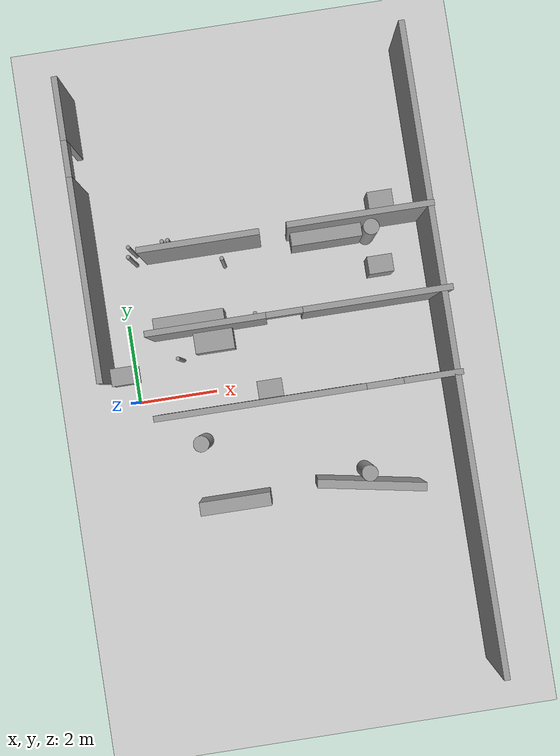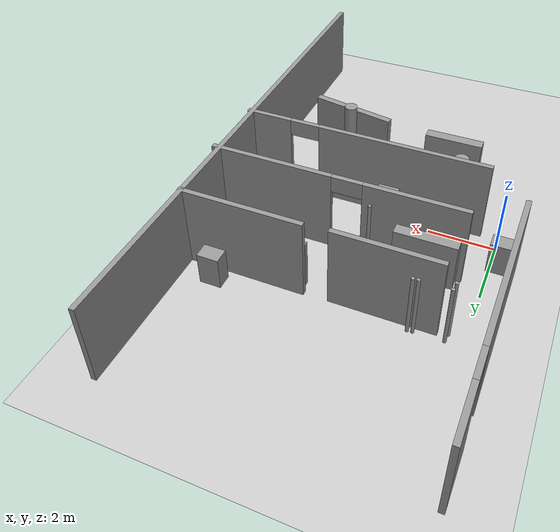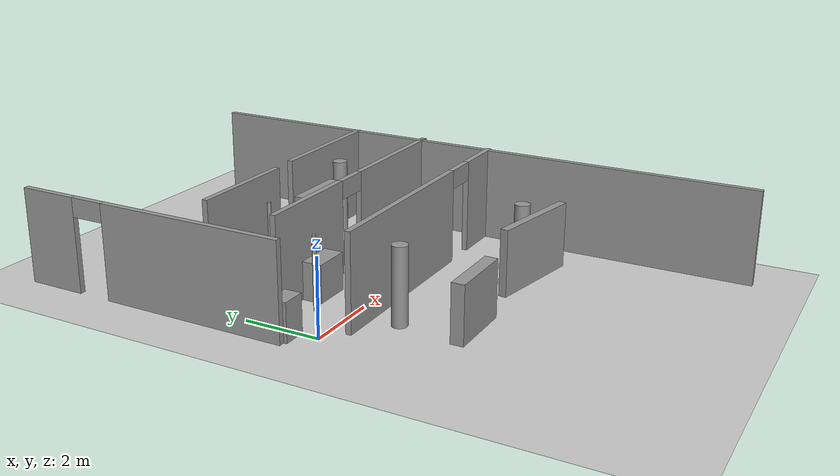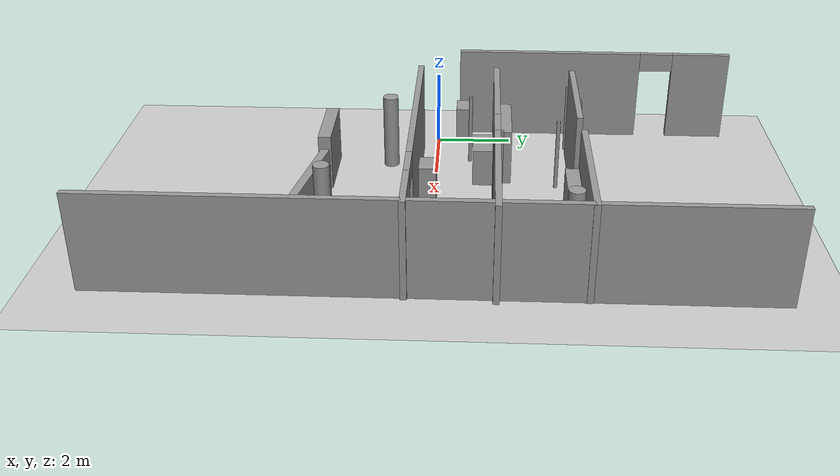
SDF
<sdf version="1.7">
 <world name="default">
  <model name="ground_plane">
   <static>1</static>
   <link name="link">
    <collision name="collision">
     <geometry><plane><normal>0 0 1</normal><size>100 100</size></plane></geometry>
     <surface>
      <contact><collide_bitmask>65535</collide_bitmask></contact>
      <friction><ode><mu>100</mu><mu2>50</mu2></ode></friction>
     </surface>
    </collision>
    <visual name="visual">
     <cast_shadows>0</cast_shadows>
     <geometry><plane><normal>0 0 1</normal><size>100 100</size></plane></geometry>
     <material>
      <script><uri>file://media/materials/scripts/gazebo.material</uri><name>Gazebo/Grey</name></script>
     </material>
    </visual>
   </link>
  </model>
  <model name="Untitled_0">
   <link name="link_0">
    <inertial>
     <mass>1</mass>
     <inertia><ixx>0.145833</ixx><ixy>0</ixy><ixz>0</ixz><iyy>0.145833</iyy><iyz>0</iyz><izz>0.125</izz></inertia>
    </inertial>
    <visual name="visual">
     <geometry><cylinder><radius>0.2</radius><length>2</length></cylinder></geometry>
     <material>
      <lighting>1</lighting>
      <script><uri>file://media/materials/scripts/gazebo.material</uri><name>Gazebo/Grey</name></script>
      <shader type="pixel"><normal_map>__default__</normal_map></shader>
      <ambient>0.3 0.3 0.3 1</ambient>
      <diffuse>0.7 0.7 0.7 1</diffuse>
      <specular>0.01 0.01 0.01 1</specular>
      <emissive>0 0 0 1</emissive>
     </material>
    </visual>
    <collision name="collision">
     <geometry><cylinder><radius>0.2</radius><length>2</length></cylinder></geometry>
     <surface>
      <friction>
       <ode><mu>1</mu><mu2>1</mu2><fdir1>0 0 0</fdir1><slip1>0</slip1><slip2>0</slip2></ode>
       <torsional>
        <coefficient>1</coefficient>
        <patch_radius>0</patch_radius>
        <surface_radius>0</surface_radius>
        <use_patch_radius>1</use_patch_radius>
        <ode><slip>0</slip></ode>
       </torsional>
      </friction>
      <bounce><restitution_coefficient>0</restitution_coefficient><threshold>1e+06</threshold></bounce>
      <contact>
       <collide_without_contact>0</collide_without_contact>
       <collide_without_contact_bitmask>1</collide_without_contact_bitmask>
       <collide_bitmask>1</collide_bitmask>
       <ode>
        <soft_cfm>0</soft_cfm>
        <soft_erp>0.2</soft_erp>
        <kp>1e+13</kp>
        <kd>1</kd>
        <max_vel>0.01</max_vel>
        <min_depth>0</min_depth>
       </ode>
       <bullet>
        <split_impulse>1</split_impulse>
        <split_impulse_penetration_threshold>-0.01</split_impulse_penetration_threshold>
        <soft_cfm>0</soft_cfm>
        <soft_erp>0.2</soft_erp>
        <kp>1e+13</kp>
        <kd>1</kd>
       </bullet>
      </contact>
     </surface>
    </collision>
   </link>
   <static>0</static>
   <pose>5.46755 -2.55179 0.999996 0 -0 0.000125</pose>
  </model>
  <model name="Untitled_0_clone">
   <link name="link_0">
    <inertial>
     <mass>1</mass>
     <inertia><ixx>0.145833</ixx><ixy>0</ixy><ixz>0</ixz><iyy>0.145833</iyy><iyz>0</iyz><izz>0.125</izz></inertia>
    </inertial>
    <visual name="visual">
     <geometry><cylinder><radius>0.2</radius><length>2</length></cylinder></geometry>
     <material>
      <lighting>1</lighting>
      <script><uri>file://media/materials/scripts/gazebo.material</uri><name>Gazebo/Grey</name></script>
      <shader type="pixel"><normal_map>__default__</normal_map></shader>
      <ambient>0.3 0.3 0.3 1</ambient>
      <diffuse>0.7 0.7 0.7 1</diffuse>
      <specular>0.01 0.01 0.01 1</specular>
      <emissive>0 0 0 1</emissive>
     </material>
    </visual>
    <collision name="collision">
     <geometry><cylinder><radius>0.2</radius><length>2</length></cylinder></geometry>
     <surface>
      <friction>
       <ode><mu>1</mu><mu2>1</mu2><fdir1>0 0 0</fdir1><slip1>0</slip1><slip2>0</slip2></ode>
       <torsional>
        <coefficient>1</coefficient>
        <patch_radius>0</patch_radius>
        <surface_radius>0</surface_radius>
        <use_patch_radius>1</use_patch_radius>
        <ode><slip>0</slip></ode>
       </torsional>
      </friction>
      <bounce><restitution_coefficient>0</restitution_coefficient><threshold>1e+06</threshold></bounce>
      <contact>
       <collide_without_contact>0</collide_without_contact>
       <collide_without_contact_bitmask>1</collide_without_contact_bitmask>
       <collide_bitmask>1</collide_bitmask>
       <ode>
        <soft_cfm>0</soft_cfm>
        <soft_erp>0.2</soft_erp>
        <kp>1e+13</kp>
        <kd>1</kd>
        <max_vel>0.01</max_vel>
        <min_depth>0</min_depth>
       </ode>
       <bullet>
        <split_impulse>1</split_impulse>
        <split_impulse_penetration_threshold>-0.01</split_impulse_penetration_threshold>
        <soft_cfm>0</soft_cfm>
        <soft_erp>0.2</soft_erp>
        <kp>1e+13</kp>
        <kd>1</kd>
       </bullet>
      </contact>
     </surface>
    </collision>
   </link>
   <static>0</static>
   <pose>1.5286 -1.22831 0.999994 0 -0 0.061669</pose>
  </model>
  <model name="Untitled">
   <link name="Wall_1">
    <pose>7.85247 -0.035444 0 0 0 -1.5708</pose>
    <visual name="Wall_1_Visual">
     <pose>0 0 1.25 0 -0 0</pose>
     <geometry><box><size>16 0.15 2.5</size></box></geometry>
     <material>
      <script><uri>file://media/materials/scripts/gazebo.material</uri><name>Gazebo/Grey</name></script>
      <ambient>1 1 1 1</ambient>
      <shader type="pixel"/>
     </material>
     <meta><layer>0</layer></meta>
    </visual>
    <collision name="Wall_1_Collision">
     <pose>0 0 1.25 0 -0 0</pose>
     <geometry><box><size>16 0.15 2.5</size></box></geometry>
     <surface>
      <friction>
       <ode><mu>1</mu><mu2>1</mu2><fdir1>0 0 0</fdir1><slip1>0</slip1><slip2>0</slip2></ode>
       <torsional>
        <coefficient>1</coefficient>
        <patch_radius>0</patch_radius>
        <surface_radius>0</surface_radius>
        <use_patch_radius>1</use_patch_radius>
        <ode><slip>0</slip></ode>
       </torsional>
      </friction>
      <bounce><restitution_coefficient>0</restitution_coefficient><threshold>1e+06</threshold></bounce>
      <contact>
       <collide_without_contact>0</collide_without_contact>
       <collide_without_contact_bitmask>1</collide_without_contact_bitmask>
       <collide_bitmask>1</collide_bitmask>
       <ode>
        <soft_cfm>0</soft_cfm>
        <soft_erp>0.2</soft_erp>
        <kp>1e+13</kp>
        <kd>1</kd>
        <max_vel>0.01</max_vel>
        <min_depth>0</min_depth>
       </ode>
       <bullet>
        <split_impulse>1</split_impulse>
        <split_impulse_penetration_threshold>-0.01</split_impulse_penetration_threshold>
        <soft_cfm>0</soft_cfm>
        <soft_erp>0.2</soft_erp>
        <kp>1e+13</kp>
        <kd>1</kd>
       </bullet>
      </contact>
     </surface>
    </collision>
   </link>
   <link name="Wall_40">
    <pose>4.24273 -0.649108 0 0 -0 0</pose>
    <visual name="Wall_40_Visual_0">
     <pose>-1.17108 0 1.25 0 -0 0</pose>
     <geometry><box><size>5.15784 0.15 2.5</size></box></geometry>
     <material>
      <script><uri>file://media/materials/scripts/gazebo.material</uri><name>Gazebo/Grey</name></script>
      <ambient>1 1 1 1</ambient>
      <shader type="pixel"/>
     </material>
     <meta><layer>0</layer></meta>
    </visual>
    <visual name="Wall_40_Visual_1">
     <pose>3.02892 0 1.25 0 -0 0</pose>
     <geometry><box><size>1.44216 0.15 2.5</size></box></geometry>
     <material>
      <script><uri>file://media/materials/scripts/gazebo.material</uri><name>Gazebo/Grey</name></script>
      <ambient>1 1 1 1</ambient>
      <shader type="pixel"/>
     </material>
     <meta><layer>0</layer></meta>
    </visual>
    <visual name="Wall_40_Visual_2">
     <pose>1.85784 0 2.25 0 -0 0</pose>
     <geometry><box><size>0.9 0.15 0.5</size></box></geometry>
     <material>
      <script><uri>file://media/materials/scripts/gazebo.material</uri><name>Gazebo/Grey</name></script>
      <ambient>1 1 1 1</ambient>
      <shader type="pixel"/>
     </material>
     <meta><layer>0</layer></meta>
    </visual>
    <collision name="Wall_40_Collision_0">
     <pose>-1.17108 0 1.25 0 -0 0</pose>
     <geometry><box><size>5.15784 0.15 2.5</size></box></geometry>
     <surface>
      <friction>
       <ode><mu>1</mu><mu2>1</mu2><fdir1>0 0 0</fdir1><slip1>0</slip1><slip2>0</slip2></ode>
       <torsional>
        <coefficient>1</coefficient>
        <patch_radius>0</patch_radius>
        <surface_radius>0</surface_radius>
        <use_patch_radius>1</use_patch_radius>
        <ode><slip>0</slip></ode>
       </torsional>
      </friction>
      <bounce><restitution_coefficient>0</restitution_coefficient><threshold>1e+06</threshold></bounce>
      <contact>
       <collide_without_contact>0</collide_without_contact>
       <collide_without_contact_bitmask>1</collide_without_contact_bitmask>
       <collide_bitmask>1</collide_bitmask>
       <ode>
        <soft_cfm>0</soft_cfm>
        <soft_erp>0.2</soft_erp>
        <kp>1e+13</kp>
        <kd>1</kd>
        <max_vel>0.01</max_vel>
        <min_depth>0</min_depth>
       </ode>
       <bullet>
        <split_impulse>1</split_impulse>
        <split_impulse_penetration_threshold>-0.01</split_impulse_penetration_threshold>
        <soft_cfm>0</soft_cfm>
        <soft_erp>0.2</soft_erp>
        <kp>1e+13</kp>
        <kd>1</kd>
       </bullet>
      </contact>
     </surface>
    </collision>
    <collision name="Wall_40_Collision_1">
     <pose>3.02892 0 1.25 0 -0 0</pose>
     <geometry><box><size>1.44216 0.15 2.5</size></box></geometry>
     <surface>
      <friction>
       <ode><mu>1</mu><mu2>1</mu2><fdir1>0 0 0</fdir1><slip1>0</slip1><slip2>0</slip2></ode>
       <torsional>
        <coefficient>1</coefficient>
        <patch_radius>0</patch_radius>
        <surface_radius>0</surface_radius>
        <use_patch_radius>1</use_patch_radius>
        <ode><slip>0</slip></ode>
       </torsional>
      </friction>
      <bounce><restitution_coefficient>0</restitution_coefficient><threshold>1e+06</threshold></bounce>
      <contact>
       <collide_without_contact>0</collide_without_contact>
       <collide_without_contact_bitmask>1</collide_without_contact_bitmask>
       <collide_bitmask>1</collide_bitmask>
       <ode>
        <soft_cfm>0</soft_cfm>
        <soft_erp>0.2</soft_erp>
        <kp>1e+13</kp>
        <kd>1</kd>
        <max_vel>0.01</max_vel>
        <min_depth>0</min_depth>
       </ode>
       <bullet>
        <split_impulse>1</split_impulse>
        <split_impulse_penetration_threshold>-0.01</split_impulse_penetration_threshold>
        <soft_cfm>0</soft_cfm>
        <soft_erp>0.2</soft_erp>
        <kp>1e+13</kp>
        <kd>1</kd>
       </bullet>
      </contact>
     </surface>
    </collision>
    <collision name="Wall_40_Collision_2">
     <pose>1.85784 0 2.25 0 -0 0</pose>
     <geometry><box><size>0.9 0.15 0.5</size></box></geometry>
     <surface>
      <friction>
       <ode><mu>1</mu><mu2>1</mu2><fdir1>0 0 0</fdir1><slip1>0</slip1><slip2>0</slip2></ode>
       <torsional>
        <coefficient>1</coefficient>
        <patch_radius>0</patch_radius>
        <surface_radius>0</surface_radius>
        <use_patch_radius>1</use_patch_radius>
        <ode><slip>0</slip></ode>
       </torsional>
      </friction>
      <bounce><restitution_coefficient>0</restitution_coefficient><threshold>1e+06</threshold></bounce>
      <contact>
       <collide_without_contact>0</collide_without_contact>
       <collide_without_contact_bitmask>1</collide_without_contact_bitmask>
       <collide_bitmask>1</collide_bitmask>
       <ode>
        <soft_cfm>0</soft_cfm>
        <soft_erp>0.2</soft_erp>
        <kp>1e+13</kp>
        <kd>1</kd>
        <max_vel>0.01</max_vel>
        <min_depth>0</min_depth>
       </ode>
       <bullet>
        <split_impulse>1</split_impulse>
        <split_impulse_penetration_threshold>-0.01</split_impulse_penetration_threshold>
        <soft_cfm>0</soft_cfm>
        <soft_erp>0.2</soft_erp>
        <kp>1e+13</kp>
        <kd>1</kd>
       </bullet>
      </contact>
     </surface>
    </collision>
   </link>
   <link name="Wall_44">
    <pose>4.32253 1.39911 0 0 -0 0</pose>
    <visual name="Wall_44_Visual_0">
     <pose>-2.27499 0 1.25 0 -0 0</pose>
     <geometry><box><size>2.95003 0.15 2.5</size></box></geometry>
     <material>
      <script><uri>file://media/materials/scripts/gazebo.material</uri><name>Gazebo/Grey</name></script>
      <ambient>1 1 1 1</ambient>
      <shader type="pixel"/>
     </material>
     <meta><layer>0</layer></meta>
    </visual>
    <visual name="Wall_44_Visual_1">
     <pose>1.92501 0 1.25 0 -0 0</pose>
     <geometry><box><size>3.64997 0.15 2.5</size></box></geometry>
     <material>
      <script><uri>file://media/materials/scripts/gazebo.material</uri><name>Gazebo/Grey</name></script>
      <ambient>1 1 1 1</ambient>
      <shader type="pixel"/>
     </material>
     <meta><layer>0</layer></meta>
    </visual>
    <visual name="Wall_44_Visual_2">
     <pose>-0.349975 0 2.25 0 -0 0</pose>
     <geometry><box><size>0.9 0.15 0.5</size></box></geometry>
     <material>
      <script><uri>file://media/materials/scripts/gazebo.material</uri><name>Gazebo/Grey</name></script>
      <ambient>1 1 1 1</ambient>
      <shader type="pixel"/>
     </material>
     <meta><layer>0</layer></meta>
    </visual>
    <collision name="Wall_44_Collision_0">
     <pose>-2.27499 0 1.25 0 -0 0</pose>
     <geometry><box><size>2.95003 0.15 2.5</size></box></geometry>
     <surface>
      <friction>
       <ode><mu>1</mu><mu2>1</mu2><fdir1>0 0 0</fdir1><slip1>0</slip1><slip2>0</slip2></ode>
       <torsional>
        <coefficient>1</coefficient>
        <patch_radius>0</patch_radius>
        <surface_radius>0</surface_radius>
        <use_patch_radius>1</use_patch_radius>
        <ode><slip>0</slip></ode>
       </torsional>
      </friction>
      <bounce><restitution_coefficient>0</restitution_coefficient><threshold>1e+06</threshold></bounce>
      <contact>
       <collide_without_contact>0</collide_without_contact>
       <collide_without_contact_bitmask>1</collide_without_contact_bitmask>
       <collide_bitmask>1</collide_bitmask>
       <ode>
        <soft_cfm>0</soft_cfm>
        <soft_erp>0.2</soft_erp>
        <kp>1e+13</kp>
        <kd>1</kd>
        <max_vel>0.01</max_vel>
        <min_depth>0</min_depth>
       </ode>
       <bullet>
        <split_impulse>1</split_impulse>
        <split_impulse_penetration_threshold>-0.01</split_impulse_penetration_threshold>
        <soft_cfm>0</soft_cfm>
        <soft_erp>0.2</soft_erp>
        <kp>1e+13</kp>
        <kd>1</kd>
       </bullet>
      </contact>
     </surface>
    </collision>
    <collision name="Wall_44_Collision_1">
     <pose>1.92501 0 1.25 0 -0 0</pose>
     <geometry><box><size>3.64997 0.15 2.5</size></box></geometry>
     <surface>
      <friction>
       <ode><mu>1</mu><mu2>1</mu2><fdir1>0 0 0</fdir1><slip1>0</slip1><slip2>0</slip2></ode>
       <torsional>
        <coefficient>1</coefficient>
        <patch_radius>0</patch_radius>
        <surface_radius>0</surface_radius>
        <use_patch_radius>1</use_patch_radius>
        <ode><slip>0</slip></ode>
       </torsional>
      </friction>
      <bounce><restitution_coefficient>0</restitution_coefficient><threshold>1e+06</threshold></bounce>
      <contact>
       <collide_without_contact>0</collide_without_contact>
       <collide_without_contact_bitmask>1</collide_without_contact_bitmask>
       <collide_bitmask>1</collide_bitmask>
       <ode>
        <soft_cfm>0</soft_cfm>
        <soft_erp>0.2</soft_erp>
        <kp>1e+13</kp>
        <kd>1</kd>
        <max_vel>0.01</max_vel>
        <min_depth>0</min_depth>
       </ode>
       <bullet>
        <split_impulse>1</split_impulse>
        <split_impulse_penetration_threshold>-0.01</split_impulse_penetration_threshold>
        <soft_cfm>0</soft_cfm>
        <soft_erp>0.2</soft_erp>
        <kp>1e+13</kp>
        <kd>1</kd>
       </bullet>
      </contact>
     </surface>
    </collision>
    <collision name="Wall_44_Collision_2">
     <pose>-0.349975 0 2.25 0 -0 0</pose>
     <geometry><box><size>0.9 0.15 0.5</size></box></geometry>
     <surface>
      <friction>
       <ode><mu>1</mu><mu2>1</mu2><fdir1>0 0 0</fdir1><slip1>0</slip1><slip2>0</slip2></ode>
       <torsional>
        <coefficient>1</coefficient>
        <patch_radius>0</patch_radius>
        <surface_radius>0</surface_radius>
        <use_patch_radius>1</use_patch_radius>
        <ode><slip>0</slip></ode>
       </torsional>
      </friction>
      <bounce><restitution_coefficient>0</restitution_coefficient><threshold>1e+06</threshold></bounce>
      <contact>
       <collide_without_contact>0</collide_without_contact>
       <collide_without_contact_bitmask>1</collide_without_contact_bitmask>
       <collide_bitmask>1</collide_bitmask>
       <ode>
        <soft_cfm>0</soft_cfm>
        <soft_erp>0.2</soft_erp>
        <kp>1e+13</kp>
        <kd>1</kd>
        <max_vel>0.01</max_vel>
        <min_depth>0</min_depth>
       </ode>
       <bullet>
        <split_impulse>1</split_impulse>
        <split_impulse_penetration_threshold>-0.01</split_impulse_penetration_threshold>
        <soft_cfm>0</soft_cfm>
        <soft_erp>0.2</soft_erp>
        <kp>1e+13</kp>
        <kd>1</kd>
       </bullet>
      </contact>
     </surface>
    </collision>
   </link>
   <link name="Wall_54">
    <pose>2.17516 3.42072 0 0 -0 3.14159</pose>
    <visual name="Wall_54_Visual">
     <pose>0 0 1.25 0 -0 0</pose>
     <geometry><box><size>3 0.15 2.5</size></box></geometry>
     <material>
      <script><uri>file://media/materials/scripts/gazebo.material</uri><name>Gazebo/Grey</name></script>
      <ambient>1 1 1 1</ambient>
      <shader type="pixel"/>
     </material>
     <meta><layer>0</layer></meta>
    </visual>
    <collision name="Wall_54_Collision">
     <pose>0 0 1.25 0 -0 0</pose>
     <geometry><box><size>3 0.15 2.5</size></box></geometry>
     <surface>
      <friction>
       <ode><mu>1</mu><mu2>1</mu2><fdir1>0 0 0</fdir1><slip1>0</slip1><slip2>0</slip2></ode>
       <torsional>
        <coefficient>1</coefficient>
        <patch_radius>0</patch_radius>
        <surface_radius>0</surface_radius>
        <use_patch_radius>1</use_patch_radius>
        <ode><slip>0</slip></ode>
       </torsional>
      </friction>
      <bounce><restitution_coefficient>0</restitution_coefficient><threshold>1e+06</threshold></bounce>
      <contact>
       <collide_without_contact>0</collide_without_contact>
       <collide_without_contact_bitmask>1</collide_without_contact_bitmask>
       <collide_bitmask>1</collide_bitmask>
       <ode>
        <soft_cfm>0</soft_cfm>
        <soft_erp>0.2</soft_erp>
        <kp>1e+13</kp>
        <kd>1</kd>
        <max_vel>0.01</max_vel>
        <min_depth>0</min_depth>
       </ode>
       <bullet>
        <split_impulse>1</split_impulse>
        <split_impulse_penetration_threshold>-0.01</split_impulse_penetration_threshold>
        <soft_cfm>0</soft_cfm>
        <soft_erp>0.2</soft_erp>
        <kp>1e+13</kp>
        <kd>1</kd>
       </bullet>
      </contact>
     </surface>
    </collision>
   </link>
   <link name="Wall_56">
    <pose>6.14496 3.47392 0 0 -0 0</pose>
    <inertial>
     <inertia><ixx>0</ixx><ixy>0</ixy><ixz>0</ixz><iyy>0</iyy><iyz>0</iyz><izz>0</izz></inertia>
     <mass>0</mass>
    </inertial>
    <visual name="Wall_56_Visual">
     <pose>0 0 1.25 0 -0 0</pose>
     <geometry><box><size>3.60104 0.15 2.5</size></box></geometry>
     <material>
      <script><uri>file://media/materials/scripts/gazebo.material</uri><name>Gazebo/Grey</name></script>
      <ambient>1 1 1 1</ambient>
      <shader type="pixel"/>
     </material>
     <meta><layer>0</layer></meta>
    </visual>
    <collision name="Wall_56_Collision">
     <pose>0 0 1.25 0 -0 0</pose>
     <geometry><box><size>3.60104 0.15 2.5</size></box></geometry>
     <surface>
      <friction>
       <ode><mu>1</mu><mu2>1</mu2><fdir1>0 0 0</fdir1><slip1>0</slip1><slip2>0</slip2></ode>
       <torsional>
        <coefficient>1</coefficient>
        <patch_radius>0</patch_radius>
        <surface_radius>0</surface_radius>
        <use_patch_radius>1</use_patch_radius>
        <ode><slip>0</slip></ode>
       </torsional>
      </friction>
      <bounce><restitution_coefficient>0</restitution_coefficient><threshold>1e+06</threshold></bounce>
      <contact>
       <collide_without_contact>0</collide_without_contact>
       <collide_without_contact_bitmask>1</collide_without_contact_bitmask>
       <collide_bitmask>1</collide_bitmask>
       <ode>
        <soft_cfm>0</soft_cfm>
        <soft_erp>0.2</soft_erp>
        <kp>1e+13</kp>
        <kd>1</kd>
        <max_vel>0.01</max_vel>
        <min_depth>0</min_depth>
       </ode>
       <bullet>
        <split_impulse>1</split_impulse>
        <split_impulse_penetration_threshold>-0.01</split_impulse_penetration_threshold>
        <soft_cfm>0</soft_cfm>
        <soft_erp>0.2</soft_erp>
        <kp>1e+13</kp>
        <kd>1</kd>
       </bullet>
      </contact>
     </surface>
    </collision>
   </link>
   <link name="Wall_7">
    <pose>-0.647532 4.13833 0 0 0 -1.5708</pose>
    <visual name="Wall_7_Visual_0">
     <pose>-2.96481 0 1.25 0 -0 0</pose>
     <geometry><box><size>1.57038 0.15 2.5</size></box></geometry>
     <material>
      <script><uri>file://media/materials/scripts/gazebo.material</uri><name>Gazebo/Grey</name></script>
      <ambient>1 1 1 1</ambient>
      <shader type="pixel"/>
     </material>
     <meta><layer>0</layer></meta>
    </visual>
    <visual name="Wall_7_Visual_1">
     <pose>1.23519 0 1.25 0 -0 0</pose>
     <geometry><box><size>5.02962 0.15 2.5</size></box></geometry>
     <material>
      <script><uri>file://media/materials/scripts/gazebo.material</uri><name>Gazebo/Grey</name></script>
      <ambient>1 1 1 1</ambient>
      <shader type="pixel"/>
     </material>
     <meta><layer>0</layer></meta>
    </visual>
    <visual name="Wall_7_Visual_2">
     <pose>-1.72962 0 2.25 0 -0 0</pose>
     <geometry><box><size>0.9 0.15 0.5</size></box></geometry>
     <material>
      <script><uri>file://media/materials/scripts/gazebo.material</uri><name>Gazebo/Grey</name></script>
      <ambient>1 1 1 1</ambient>
      <shader type="pixel"/>
     </material>
     <meta><layer>0</layer></meta>
    </visual>
    <collision name="Wall_7_Collision_0">
     <pose>-2.96481 0 1.25 0 -0 0</pose>
     <geometry><box><size>1.57038 0.15 2.5</size></box></geometry>
     <surface>
      <friction>
       <ode><mu>1</mu><mu2>1</mu2><fdir1>0 0 0</fdir1><slip1>0</slip1><slip2>0</slip2></ode>
       <torsional>
        <coefficient>1</coefficient>
        <patch_radius>0</patch_radius>
        <surface_radius>0</surface_radius>
        <use_patch_radius>1</use_patch_radius>
        <ode><slip>0</slip></ode>
       </torsional>
      </friction>
      <bounce><restitution_coefficient>0</restitution_coefficient><threshold>1e+06</threshold></bounce>
      <contact>
       <collide_without_contact>0</collide_without_contact>
       <collide_without_contact_bitmask>1</collide_without_contact_bitmask>
       <collide_bitmask>1</collide_bitmask>
       <ode>
        <soft_cfm>0</soft_cfm>
        <soft_erp>0.2</soft_erp>
        <kp>1e+13</kp>
        <kd>1</kd>
        <max_vel>0.01</max_vel>
        <min_depth>0</min_depth>
       </ode>
       <bullet>
        <split_impulse>1</split_impulse>
        <split_impulse_penetration_threshold>-0.01</split_impulse_penetration_threshold>
        <soft_cfm>0</soft_cfm>
        <soft_erp>0.2</soft_erp>
        <kp>1e+13</kp>
        <kd>1</kd>
       </bullet>
      </contact>
     </surface>
    </collision>
    <collision name="Wall_7_Collision_1">
     <pose>1.23519 0 1.25 0 -0 0</pose>
     <geometry><box><size>5.02962 0.15 2.5</size></box></geometry>
     <surface>
      <friction>
       <ode><mu>1</mu><mu2>1</mu2><fdir1>0 0 0</fdir1><slip1>0</slip1><slip2>0</slip2></ode>
       <torsional>
        <coefficient>1</coefficient>
        <patch_radius>0</patch_radius>
        <surface_radius>0</surface_radius>
        <use_patch_radius>1</use_patch_radius>
        <ode><slip>0</slip></ode>
       </torsional>
      </friction>
      <bounce><restitution_coefficient>0</restitution_coefficient><threshold>1e+06</threshold></bounce>
      <contact>
       <collide_without_contact>0</collide_without_contact>
       <collide_without_contact_bitmask>1</collide_without_contact_bitmask>
       <collide_bitmask>1</collide_bitmask>
       <ode>
        <soft_cfm>0</soft_cfm>
        <soft_erp>0.2</soft_erp>
        <kp>1e+13</kp>
        <kd>1</kd>
        <max_vel>0.01</max_vel>
        <min_depth>0</min_depth>
       </ode>
       <bullet>
        <split_impulse>1</split_impulse>
        <split_impulse_penetration_threshold>-0.01</split_impulse_penetration_threshold>
        <soft_cfm>0</soft_cfm>
        <soft_erp>0.2</soft_erp>
        <kp>1e+13</kp>
        <kd>1</kd>
       </bullet>
      </contact>
     </surface>
    </collision>
    <collision name="Wall_7_Collision_2">
     <pose>-1.72962 0 2.25 0 -0 0</pose>
     <geometry><box><size>0.9 0.15 0.5</size></box></geometry>
     <surface>
      <friction>
       <ode><mu>1</mu><mu2>1</mu2><fdir1>0 0 0</fdir1><slip1>0</slip1><slip2>0</slip2></ode>
       <torsional>
        <coefficient>1</coefficient>
        <patch_radius>0</patch_radius>
        <surface_radius>0</surface_radius>
        <use_patch_radius>1</use_patch_radius>
        <ode><slip>0</slip></ode>
       </torsional>
      </friction>
      <bounce><restitution_coefficient>0</restitution_coefficient><threshold>1e+06</threshold></bounce>
      <contact>
       <collide_without_contact>0</collide_without_contact>
       <collide_without_contact_bitmask>1</collide_without_contact_bitmask>
       <collide_bitmask>1</collide_bitmask>
       <ode>
        <soft_cfm>0</soft_cfm>
        <soft_erp>0.2</soft_erp>
        <kp>1e+13</kp>
        <kd>1</kd>
        <max_vel>0.01</max_vel>
        <min_depth>0</min_depth>
       </ode>
       <bullet>
        <split_impulse>1</split_impulse>
        <split_impulse_penetration_threshold>-0.01</split_impulse_penetration_threshold>
        <soft_cfm>0</soft_cfm>
        <soft_erp>0.2</soft_erp>
        <kp>1e+13</kp>
        <kd>1</kd>
       </bullet>
      </contact>
     </surface>
    </collision>
   </link>
   <static>1</static>
   <pose>0.030064 0.19251 0 0 -0 0</pose>
  </model>
  <model name="unit_box_2">
   <pose>6.61372 2.53521 0.499997 6e-06 6e-06 0.001655</pose>
   <link name="link">
    <inertial>
     <mass>1</mass>
     <inertia>
      <ixx>0.166667</ixx>
      <ixy>0</ixy>
      <ixz>0</ixz>
      <iyy>0.166667</iyy>
      <iyz>0</iyz>
      <izz>0.166667</izz>
     </inertia>
    </inertial>
    <collision name="collision"><geometry><box><size>0.632241 0.450252 1</size></box></geometry></collision>
    <visual name="visual">
     <geometry><box><size>0.632241 0.450252 1</size></box></geometry>
     <material>
      <script><name>Gazebo/Grey</name><uri>file://media/materials/scripts/gazebo.material</uri></script>
     </material>
    </visual>
   </link>
  </model>
  <model name="unit_box_3">
   <pose>2.16451 1.25457 0.5 0 -0 0</pose>
   <link name="link">
    <inertial>
     <mass>1</mass>
     <inertia>
      <ixx>0.166667</ixx>
      <ixy>0</ixy>
      <ixz>0</ixz>
      <iyy>0.166667</iyy>
      <iyz>0</iyz>
      <izz>0.166667</izz>
     </inertia>
    </inertial>
    <collision name="collision"><geometry><box><size>1 0.524123 1</size></box></geometry></collision>
    <visual name="visual">
     <geometry><box><size>1 0.524123 1</size></box></geometry>
     <material>
      <script><name>Gazebo/Grey</name><uri>file://media/materials/scripts/gazebo.material</uri></script>
     </material>
    </visual>
   </link>
  </model>
  <model name="unit_box_4">
   <pose>5.49275 -2.87141 0.872672 -1e-06 1.8e-05 -0.182087</pose>
   <link name="link">
    <inertial>
     <mass>1</mass>
     <inertia>
      <ixx>0.166667</ixx>
      <ixy>0</ixy>
      <ixz>0</ixz>
      <iyy>0.166667</iyy>
      <iyz>0</iyz>
      <izz>0.166667</izz>
     </inertia>
    </inertial>
    <collision name="collision"><geometry><box><size>2.67296 0.210255 1.74539</size></box></geometry></collision>
    <visual name="visual">
     <geometry><box><size>2.67296 0.210255 1.74539</size></box></geometry>
     <material>
      <script><name>Gazebo/Grey</name><uri>file://media/materials/scripts/gazebo.material</uri></script>
     </material>
    </visual>
   </link>
  </model>
  <model name="unit_cylinder_clone_8">
   <pose>1.27537 0.912228 0.958521 -1e-06 -0 -0.003245</pose>
   <link name="link">
    <inertial>
     <mass>1</mass>
     <inertia><ixx>0.145833</ixx><ixy>0</ixy><ixz>0</ixz><iyy>0.145833</iyy><iyz>0</iyz><izz>0.125</izz></inertia>
    </inertial>
    <collision name="collision">
     <geometry><cylinder><radius>0.0491429</radius><length>1.91706</length></cylinder></geometry>
    </collision>
    <visual name="visual">
     <geometry><cylinder><radius>0.0491429</radius><length>1.91706</length></cylinder></geometry>
     <material>
      <script><name>Gazebo/Grey</name><uri>file://media/materials/scripts/gazebo.material</uri></script>
     </material>
    </visual>
   </link>
  </model>
  <model name="unit_cylinder_clone_9">
   <pose>0.441995 3.55636 0.958521 0 1e-06 -0.003597</pose>
   <link name="link">
    <inertial>
     <mass>1</mass>
     <inertia><ixx>0.145833</ixx><ixy>0</ixy><ixz>0</ixz><iyy>0.145833</iyy><iyz>0</iyz><izz>0.125</izz></inertia>
    </inertial>
    <collision name="collision">
     <geometry><cylinder><radius>0.0491429</radius><length>1.91706</length></cylinder></geometry>
    </collision>
    <visual name="visual">
     <geometry><cylinder><radius>0.0491429</radius><length>1.91706</length></cylinder></geometry>
     <material>
      <script><name>Gazebo/Grey</name><uri>file://media/materials/scripts/gazebo.material</uri></script>
     </material>
    </visual>
   </link>
  </model>
  <model name="unit_cylinder_clone_10">
   <pose>0.474303 3.79366 0.958529 -1e-06 -0 -0.004998</pose>
   <link name="link">
    <inertial>
     <mass>1</mass>
     <inertia><ixx>0.145833</ixx><ixy>0</ixy><ixz>0</ixz><iyy>0.145833</iyy><iyz>0</iyz><izz>0.125</izz></inertia>
    </inertial>
    <collision name="collision">
     <geometry><cylinder><radius>0.0491429</radius><length>1.91706</length></cylinder></geometry>
    </collision>
    <visual name="visual">
     <geometry><cylinder><radius>0.0491429</radius><length>1.91706</length></cylinder></geometry>
     <material>
      <script><name>Gazebo/Grey</name><uri>file://media/materials/scripts/gazebo.material</uri></script>
     </material>
    </visual>
   </link>
  </model>
  <model name="unit_cylinder_clone_11">
   <pose>2.69761 3.179 0.958529 -0 2e-06 -0.00439</pose>
   <link name="link">
    <inertial>
     <mass>1</mass>
     <inertia><ixx>0.145833</ixx><ixy>0</ixy><ixz>0</ixz><iyy>0.145833</iyy><iyz>0</iyz><izz>0.125</izz></inertia>
    </inertial>
    <collision name="collision">
     <geometry><cylinder><radius>0.0491429</radius><length>1.91706</length></cylinder></geometry>
    </collision>
    <visual name="visual">
     <geometry><cylinder><radius>0.0491429</radius><length>1.91706</length></cylinder></geometry>
     <material>
      <script><name>Gazebo/Grey</name><uri>file://media/materials/scripts/gazebo.material</uri></script>
     </material>
    </visual>
   </link>
  </model>
  <model name="unit_cylinder_clone_12">
   <pose>3.29773 1.72298 0.958521 -0 1e-06 -0.004064</pose>
   <link name="link">
    <inertial>
     <mass>1</mass>
     <inertia><ixx>0.145833</ixx><ixy>0</ixy><ixz>0</ixz><iyy>0.145833</iyy><iyz>0</iyz><izz>0.125</izz></inertia>
    </inertial>
    <collision name="collision">
     <geometry><cylinder><radius>0.0491429</radius><length>1.91706</length></cylinder></geometry>
    </collision>
    <visual name="visual">
     <geometry><cylinder><radius>0.0491429</radius><length>1.91706</length></cylinder></geometry>
     <material>
      <script><name>Gazebo/Grey</name><uri>file://media/materials/scripts/gazebo.material</uri></script>
     </material>
    </visual>
   </link>
  </model>
  <model name="unit_cylinder_clone_17">
   <pose>1.45017 3.82421 0.958521 -1e-06 -0 -0.004029</pose>
   <link name="link">
    <inertial>
     <mass>1</mass>
     <inertia><ixx>0.145833</ixx><ixy>0</ixy><ixz>0</ixz><iyy>0.145833</iyy><iyz>0</iyz><izz>0.125</izz></inertia>
    </inertial>
    <collision name="collision">
     <geometry><cylinder><radius>0.0491429</radius><length>1.91706</length></cylinder></geometry>
    </collision>
    <visual name="visual">
     <geometry><cylinder><radius>0.0491429</radius><length>1.91706</length></cylinder></geometry>
     <material>
      <script><name>Gazebo/Grey</name><uri>file://media/materials/scripts/gazebo.material</uri></script>
     </material>
    </visual>
   </link>
  </model>
  <model name="unit_cylinder_clone_18">
   <pose>1.30834 3.81387 0.958529 0 1e-06 -0.003992</pose>
   <link name="link">
    <inertial>
     <mass>1</mass>
     <inertia><ixx>0.145833</ixx><ixy>0</ixy><ixz>0</ixz><iyy>0.145833</iyy><iyz>0</iyz><izz>0.125</izz></inertia>
    </inertial>
    <collision name="collision">
     <geometry><cylinder><radius>0.0491429</radius><length>1.91706</length></cylinder></geometry>
    </collision>
    <visual name="visual">
     <geometry><cylinder><radius>0.0491429</radius><length>1.91706</length></cylinder></geometry>
     <material>
      <script><name>Gazebo/Grey</name><uri>file://media/materials/scripts/gazebo.material</uri></script>
     </material>
    </visual>
   </link>
  </model>
  <model name="unit_box_2_clone">
   <pose>6.86282 4.15609 0.5 0 -0 0.001132</pose>
   <link name="link">
    <inertial>
     <mass>1</mass>
     <inertia>
      <ixx>0.166667</ixx>
      <ixy>0</ixy>
      <ixz>0</ixz>
      <iyy>0.166667</iyy>
      <iyz>0</iyz>
      <izz>0.166667</izz>
     </inertia>
    </inertial>
    <collision name="collision"><geometry><box><size>0.632241 0.450252 1</size></box></geometry></collision>
    <visual name="visual">
     <geometry><box><size>0.632241 0.450252 1</size></box></geometry>
     <material>
      <script><name>Gazebo/Grey</name><uri>file://media/materials/scripts/gazebo.material</uri></script>
     </material>
    </visual>
   </link>
  </model>
  <model name="unit_box_2_clone_8">
   <pose>3.38269 -0.146445 0.5 0 -0 0.001132</pose>
   <link name="link">
    <inertial>
     <mass>1</mass>
     <inertia>
      <ixx>0.166667</ixx>
      <ixy>0</ixy>
      <ixz>0</ixz>
      <iyy>0.166667</iyy>
      <iyz>0</iyz>
      <izz>0.166667</izz>
     </inertia>
    </inertial>
    <collision name="collision"><geometry><box><size>0.632241 0.450252 1</size></box></geometry></collision>
    <visual name="visual">
     <geometry><box><size>0.632241 0.450252 1</size></box></geometry>
     <material>
      <script><name>Gazebo/Grey</name><uri>file://media/materials/scripts/gazebo.material</uri></script>
     </material>
    </visual>
   </link>
  </model>
  <model name="unit_box_2_clone_9">
   <pose>-0.226139 0.723891 0.499998 0 -6e-06 0.000993</pose>
   <link name="link">
    <inertial>
     <mass>1</mass>
     <inertia>
      <ixx>0.166667</ixx>
      <ixy>0</ixy>
      <ixz>0</ixz>
      <iyy>0.166667</iyy>
      <iyz>0</iyz>
      <izz>0.166667</izz>
     </inertia>
    </inertial>
    <collision name="collision"><geometry><box><size>0.632241 0.450252 1</size></box></geometry></collision>
    <visual name="visual">
     <geometry><box><size>0.632241 0.450252 1</size></box></geometry>
     <material>
      <script><name>Gazebo/Grey</name><uri>file://media/materials/scripts/gazebo.material</uri></script>
     </material>
    </visual>
   </link>
  </model>
  <model name="unit_box_5_clone">
   <pose>2.10427 -2.83657 0.745375 0 -6e-06 -4.3e-05</pose>
   <link name="link">
    <inertial>
     <mass>1</mass>
     <inertia>
      <ixx>0.166667</ixx>
      <ixy>0</ixy>
      <ixz>0</ixz>
      <iyy>0.166667</iyy>
      <iyz>0</iyz>
      <izz>0.166667</izz>
     </inertia>
    </inertial>
    <collision name="collision"><geometry><box><size>1.77714 0.335643 1.49076</size></box></geometry></collision>
    <visual name="visual">
     <geometry><box><size>1.77714 0.335643 1.49076</size></box></geometry>
     <material>
      <script><name>Gazebo/Grey</name><uri>file://media/materials/scripts/gazebo.material</uri></script>
     </material>
    </visual>
   </link>
  </model>
  <model name="unit_box_5_clone_0">
   <pose>5.34452 3.42258 0.745375 -0 6e-06 -8.3e-05</pose>
   <link name="link">
    <inertial>
     <mass>1</mass>
     <inertia>
      <ixx>0.166667</ixx>
      <ixy>0</ixy>
      <ixz>0</ixz>
      <iyy>0.166667</iyy>
      <iyz>0</iyz>
      <izz>0.166667</izz>
     </inertia>
    </inertial>
    <collision name="collision"><geometry><box><size>1.77714 0.335643 1.49076</size></box></geometry></collision>
    <visual name="visual">
     <geometry><box><size>1.77714 0.335643 1.49076</size></box></geometry>
     <material>
      <script><name>Gazebo/Grey</name><uri>file://media/materials/scripts/gazebo.material</uri></script>
     </material>
    </visual>
   </link>
  </model>
  <model name="unit_box_5_clone_1">
   <pose>1.64135 1.83477 0.745509 -0 0.000146 -0.00036</pose>
   <link name="link">
    <inertial>
     <mass>1</mass>
     <inertia>
      <ixx>0.166667</ixx>
      <ixy>0</ixy>
      <ixz>0</ixz>
      <iyy>0.166667</iyy>
      <iyz>0</iyz>
      <izz>0.166667</izz>
     </inertia>
    </inertial>
    <collision name="collision"><geometry><box><size>1.77714 0.335643 1.49076</size></box></geometry></collision>
    <visual name="visual">
     <geometry><box><size>1.77714 0.335643 1.49076</size></box></geometry>
     <material>
      <script><name>Gazebo/Grey</name><uri>file://media/materials/scripts/gazebo.material</uri></script>
     </material>
    </visual>
   </link>
  </model>
  <model name="Untitled_0_clone_clone_clone_0">
   <link name="link_0">
    <inertial>
     <mass>1</mass>
     <inertia><ixx>0.145833</ixx><ixy>0</ixy><ixz>0</ixz><iyy>0.145833</iyy><iyz>0</iyz><izz>0.125</izz></inertia>
    </inertial>
    <visual name="visual">
     <geometry><cylinder><radius>0.2</radius><length>2</length></cylinder></geometry>
     <material>
      <lighting>1</lighting>
      <script><uri>file://media/materials/scripts/gazebo.material</uri><name>Gazebo/Grey</name></script>
      <shader type="pixel"><normal_map>__default__</normal_map></shader>
      <ambient>0.3 0.3 0.3 1</ambient>
      <diffuse>0.7 0.7 0.7 1</diffuse>
      <specular>0.01 0.01 0.01 1</specular>
      <emissive>0 0 0 1</emissive>
     </material>
    </visual>
    <collision name="collision">
     <geometry><cylinder><radius>0.2</radius><length>2</length></cylinder></geometry>
     <surface>
      <friction>
       <ode><mu>1</mu><mu2>1</mu2><fdir1>0 0 0</fdir1><slip1>0</slip1><slip2>0</slip2></ode>
       <torsional>
        <coefficient>1</coefficient>
        <patch_radius>0</patch_radius>
        <surface_radius>0</surface_radius>
        <use_patch_radius>1</use_patch_radius>
        <ode><slip>0</slip></ode>
       </torsional>
      </friction>
      <bounce><restitution_coefficient>0</restitution_coefficient><threshold>1e+06</threshold></bounce>
      <contact>
       <collide_without_contact>0</collide_without_contact>
       <collide_without_contact_bitmask>1</collide_without_contact_bitmask>
       <collide_bitmask>1</collide_bitmask>
       <ode>
        <soft_cfm>0</soft_cfm>
        <soft_erp>0.2</soft_erp>
        <kp>1e+13</kp>
        <kd>1</kd>
        <max_vel>0.01</max_vel>
        <min_depth>0</min_depth>
       </ode>
       <bullet>
        <split_impulse>1</split_impulse>
        <split_impulse_penetration_threshold>-0.01</split_impulse_penetration_threshold>
        <soft_cfm>0</soft_cfm>
        <soft_erp>0.2</soft_erp>
        <kp>1e+13</kp>
        <kd>1</kd>
       </bullet>
      </contact>
     </surface>
    </collision>
   </link>
   <static>0</static>
   <pose>6.43333 3.37929 0.99999 0 -0 0.061627</pose>
  </model>
 </world>
</sdf>
